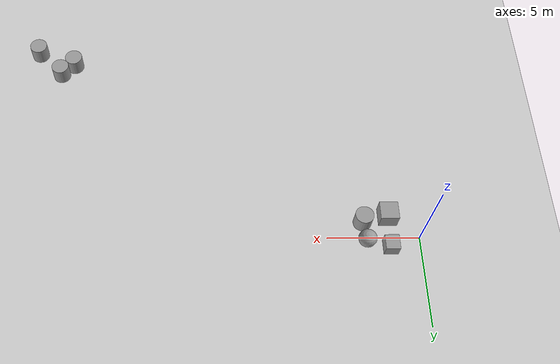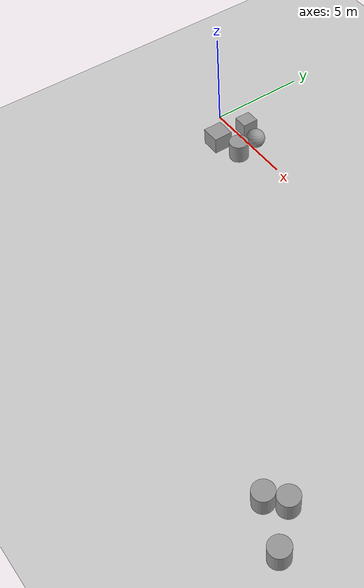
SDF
<sdf version="1.6">
 <world name="default">
  <model name="ground_plane">
   <static>1</static>
   <link name="link">
    <collision name="collision">
     <geometry><plane><normal>0 0 1</normal><size>100 100</size></plane></geometry>
     <surface>
      <contact><collide_bitmask>65535</collide_bitmask></contact>
      <friction><ode><mu>100</mu><mu2>50</mu2></ode></friction>
     </surface>
    </collision>
    <visual name="visual">
     <cast_shadows>0</cast_shadows>
     <geometry><plane><normal>0 0 1</normal><size>100 100</size></plane></geometry>
     <material>
      <script><uri>file://media/materials/scripts/gazebo.material</uri><name>Gazebo/Grey</name></script>
     </material>
    </visual>
   </link>
  </model>
  <light name="sun" type="directional">
   <pose>0 0 10 0 -0 0</pose>
   <diffuse>0.8 0.8 0.8 1</diffuse>
   <specular>0.2 0.2 0.2 1</specular>
   <attenuation>
    <range>1000</range>
    <constant>0.9</constant>
    <linear>0.01</linear>
    <quadratic>0.001</quadratic>
   </attenuation>
   <direction>-0.5 0.1 -0.9</direction>
  </light>
  <gravity>0 0 -9.8</gravity>
  <magnetic_field>6e-06 2.3e-05 -4.2e-05</magnetic_field>
  <atmosphere type="adiabatic"/>
  <physics name="default_physics" default="0" type="ode">
   <max_step_size>0.001</max_step_size>
   <real_time_factor>1</real_time_factor>
   <real_time_update_rate>1000</real_time_update_rate>
  </physics>
  <scene><ambient>0.4 0.4 0.4 1</ambient><background>0.7 0.7 0.7 1</background><shadows>1</shadows></scene>
  <audio><device>default</device></audio>
  <spherical_coordinates>
   <surface_model>EARTH_WGS84</surface_model>
   <latitude_deg>0</latitude_deg>
   <longitude_deg>0</longitude_deg>
   <elevation>0</elevation>
   <heading_deg>0</heading_deg>
  </spherical_coordinates>
  <model name="unit_cylinder_1">
   <pose>20.2383 -10.9862 0.49999 0 -0 0.001835</pose>
   <link name="link">
    <inertial>
     <mass>1</mass>
     <inertia><ixx>0.145833</ixx><ixy>0</ixy><ixz>0</ixz><iyy>0.145833</iyy><iyz>0</iyz><izz>0.125</izz></inertia>
    </inertial>
    <collision name="collision">
     <geometry><cylinder><radius>0.5</radius><length>1</length></cylinder></geometry>
    </collision>
    <visual name="visual">
     <geometry><cylinder><radius>0.5</radius><length>1</length></cylinder></geometry>
     <material>
      <script><name>Gazebo/Grey</name><uri>file://media/materials/scripts/gazebo.material</uri></script>
     </material>
    </visual>
   </link>
  </model>
  <model name="unit_cylinder_2">
   <pose>21.6742 -12.528 0.499993 -2e-06 -0 -0</pose>
   <link name="link">
    <inertial>
     <mass>1</mass>
     <inertia><ixx>0.145833</ixx><ixy>0</ixy><ixz>0</ixz><iyy>0.145833</iyy><iyz>0</iyz><izz>0.125</izz></inertia>
    </inertial>
    <collision name="collision">
     <geometry><cylinder><radius>0.5</radius><length>1</length></cylinder></geometry>
    </collision>
    <visual name="visual">
     <geometry><cylinder><radius>0.5</radius><length>1</length></cylinder></geometry>
     <material>
      <script><name>Gazebo/Grey</name><uri>file://media/materials/scripts/gazebo.material</uri></script>
     </material>
    </visual>
   </link>
  </model>
  <model name="unit_cylinder_3">
   <pose>19.4877 -11.6472 0.499994 -3e-06 -1e-06 0.00063</pose>
   <link name="link">
    <inertial>
     <mass>1</mass>
     <inertia><ixx>0.145833</ixx><ixy>0</ixy><ixz>0</ixz><iyy>0.145833</iyy><iyz>0</iyz><izz>0.125</izz></inertia>
    </inertial>
    <collision name="collision">
     <geometry><cylinder><radius>0.5</radius><length>1</length></cylinder></geometry>
    </collision>
    <visual name="visual">
     <geometry><cylinder><radius>0.5</radius><length>1</length></cylinder></geometry>
     <material>
      <script><name>Gazebo/Grey</name><uri>file://media/materials/scripts/gazebo.material</uri></script>
     </material>
    </visual>
   </link>
  </model>
  <model name="unit_sphere">
   <pose>2.89345 0.21731 0.5 0 -0 0</pose>
   <link name="link">
    <inertial>
     <mass>1</mass>
     <inertia><ixx>0.1</ixx><ixy>0</ixy><ixz>0</ixz><iyy>0.1</iyy><iyz>0</iyz><izz>0.1</izz></inertia>
    </inertial>
    <collision name="collision"><geometry><sphere><radius>0.5</radius></sphere></geometry></collision>
    <visual name="visual">
     <geometry><sphere><radius>0.5</radius></sphere></geometry>
     <material>
      <script><name>Gazebo/Grey</name><uri>file://media/materials/scripts/gazebo.material</uri></script>
     </material>
    </visual>
   </link>
  </model>
  <model name="unit_cylinder">
   <pose>3.01895 -0.92983 0.499997 3e-06 -3e-06 0</pose>
   <link name="link">
    <inertial>
     <mass>1</mass>
     <inertia><ixx>0.145833</ixx><ixy>0</ixy><ixz>0</ixz><iyy>0.145833</iyy><iyz>0</iyz><izz>0.125</izz></inertia>
    </inertial>
    <collision name="collision">
     <geometry><cylinder><radius>0.5</radius><length>1</length></cylinder></geometry>
    </collision>
    <visual name="visual">
     <geometry><cylinder><radius>0.5</radius><length>1</length></cylinder></geometry>
     <material>
      <script><name>Gazebo/Grey</name><uri>file://media/materials/scripts/gazebo.material</uri></script>
     </material>
    </visual>
   </link>
  </model>
  <model name="unit_box">
   <pose>1.63211 -1.26196 0.376412 0 -0 0</pose>
   <link name="link">
    <inertial>
     <mass>1</mass>
     <inertia>
      <ixx>0.166667</ixx>
      <ixy>0</ixy>
      <ixz>0</ixz>
      <iyy>0.166667</iyy>
      <iyz>0</iyz>
      <izz>0.166667</izz>
     </inertia>
    </inertial>
    <collision name="collision"><geometry><box><size>1 0.999999 0.999999</size></box></geometry></collision>
    <visual name="visual">
     <geometry><box><size>1 0.999999 0.999999</size></box></geometry>
     <material>
      <script><name>Gazebo/Grey</name><uri>file://media/materials/scripts/gazebo.material</uri></script>
     </material>
    </visual>
   </link>
  </model>
  <model name="unit_box_clone">
   <pose>1.64371 0.539309 0.376412 0 -0 0</pose>
   <link name="link">
    <inertial>
     <mass>1</mass>
     <inertia>
      <ixx>0.166667</ixx>
      <ixy>0</ixy>
      <ixz>0</ixz>
      <iyy>0.166667</iyy>
      <iyz>0</iyz>
      <izz>0.166667</izz>
     </inertia>
    </inertial>
    <collision name="collision">
     <geometry><box><size>0.768876 0.825722 0.752824</size></box></geometry>
    </collision>
    <visual name="visual">
     <geometry><box><size>0.768876 0.825722 0.752824</size></box></geometry>
     <material>
      <script><name>Gazebo/Grey</name><uri>file://media/materials/scripts/gazebo.material</uri></script>
     </material>
    </visual>
   </link>
  </model>
 </world>
</sdf>
